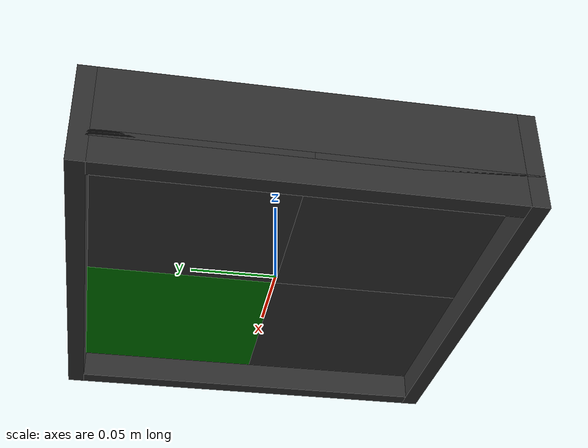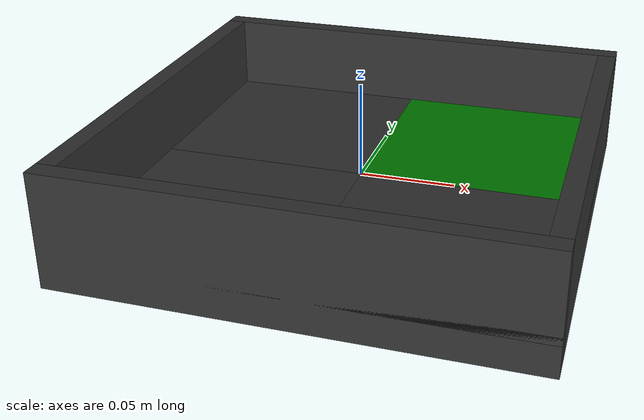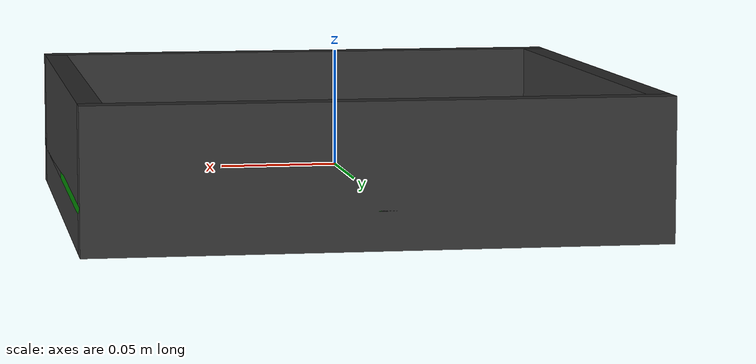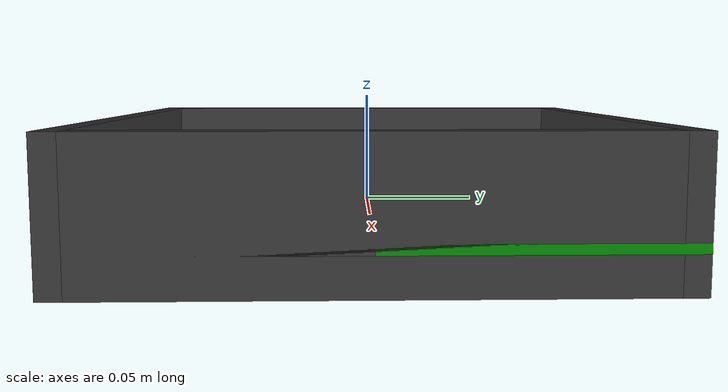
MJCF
<mujoco model="external_frame_huarongdao">
  <asset>
    <texture name="tex_frame" type="2d" builtin="flat" rgb1="0.2 0.2 0.2" width="512" height="512"/>
    <material name="mat_frame" texture="tex_frame" shininess="0.1" specular="0.1"/>
    <texture name="tex_green" type="2d" builtin="flat" rgb1="0 0.5 0" width="512" height="512"/>
    <material name="mat_green" texture="tex_green" shininess="0.1" specular="0.1"/>
  </asset>
  <worldbody>
   <body>
    <body name="object">
      <inertial pos="0 0 0" mass="100" diaginertia="1 1 1" />

      <geom name="wall_back" type="box" size="0.12 0.005 0.03" pos="0 0.115 0.01" material="mat_frame" group="1" density="10000"/>
      <geom name="wall_front" type="box" size="0.12 0.005 0.03" pos="0 -0.115 0.01" material="mat_frame" group="1" density="10000"/>
      <geom name="wall_left" type="box" size="0.005 0.11 0.03" pos="-0.115 0 0.01" material="mat_frame" group="1" density="10000"/>
      <geom name="wall_right" type="box" size="0.005 0.11 0.03" pos="0.115 0 0.01" material="mat_frame" group="1" density="10000"/>

      <geom name="frame_base_tl" type="box" size="0.06 0.06 0.002" pos="-0.06 0.06 -0.002" material="mat_frame" group="1" density="10000"/>
      <geom name="frame_base_tr" type="box" size="0.06 0.06 0.002" pos="0.06 0.06 -0.002" material="mat_green" group="1" density="10000"/>
      <geom name="frame_base_bl" type="box" size="0.06 0.06 0.002" pos="-0.06 -0.06 -0.002" material="mat_frame" group="1" density="10000"/>
      <geom name="frame_base_br" type="box" size="0.06 0.06 0.002" pos="0.06 -0.06 -0.002" material="mat_frame" group="1" density="10000"/>

      <site name="bottom_site" pos="0 0 0" size="0.002" rgba="0 0 0 0"/>
    </body>
   </body>
  </worldbody>
</mujoco>
